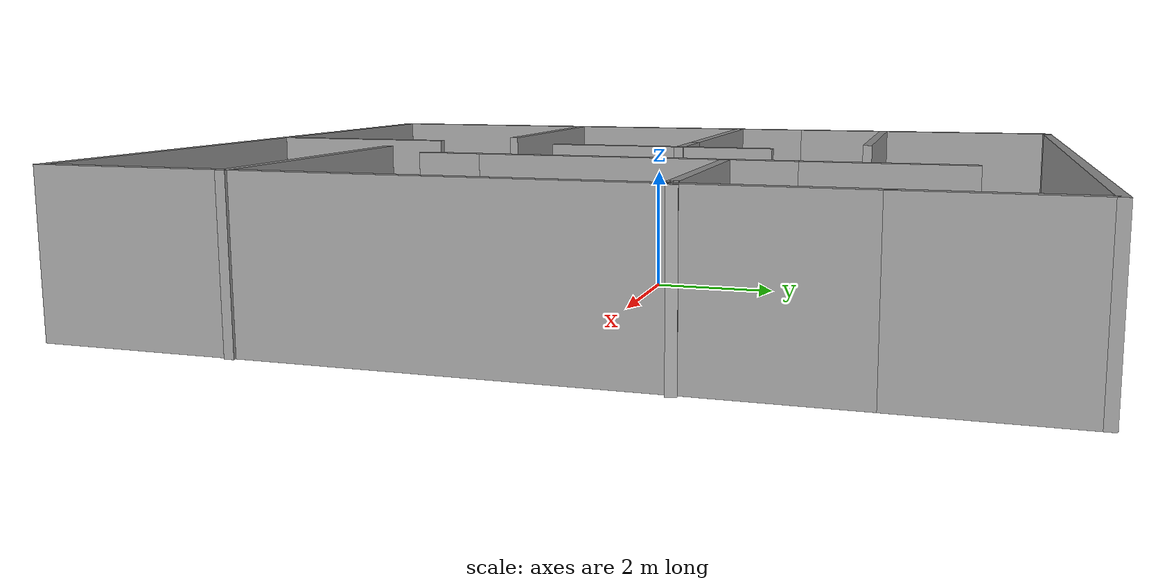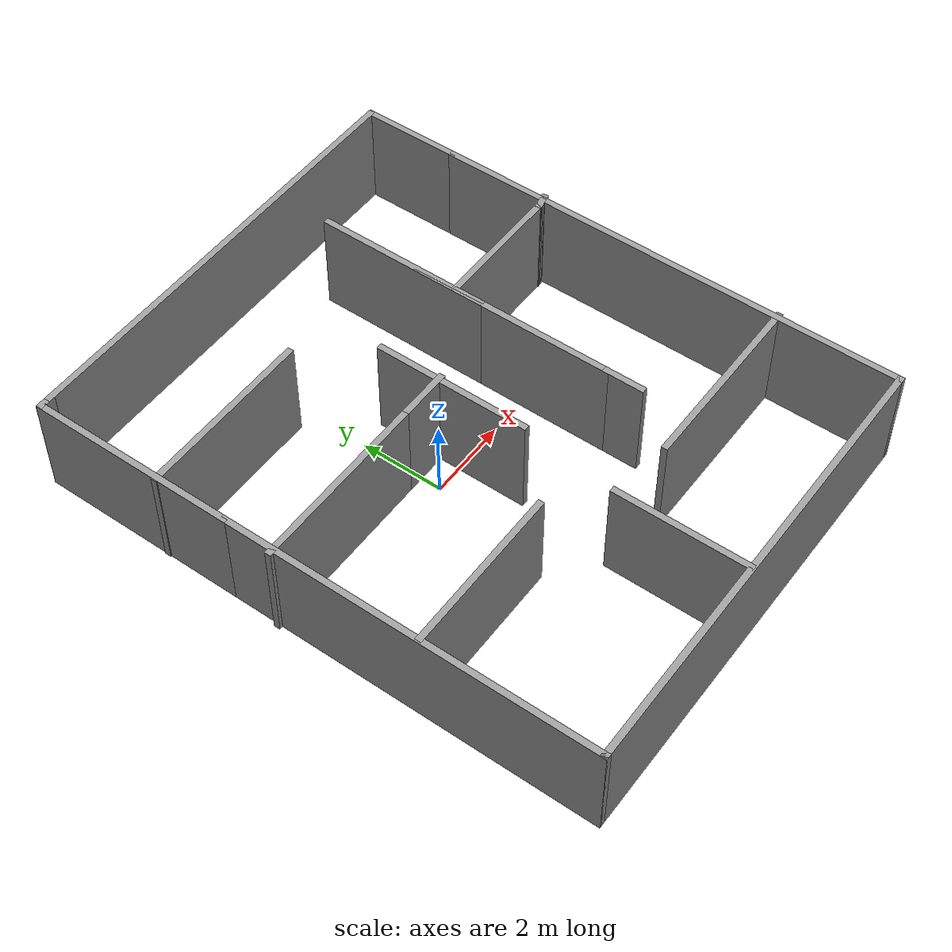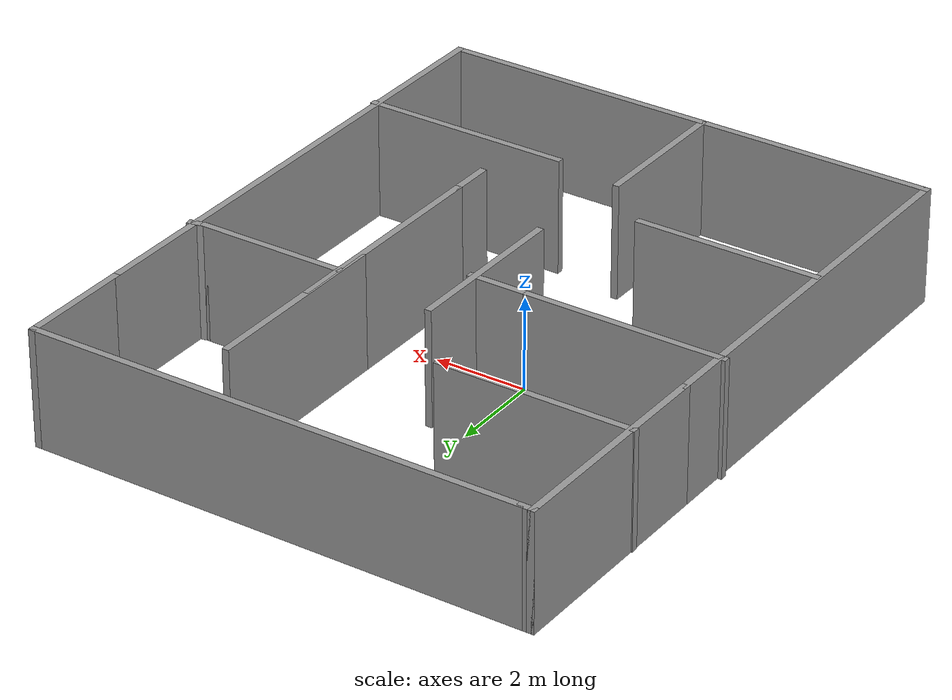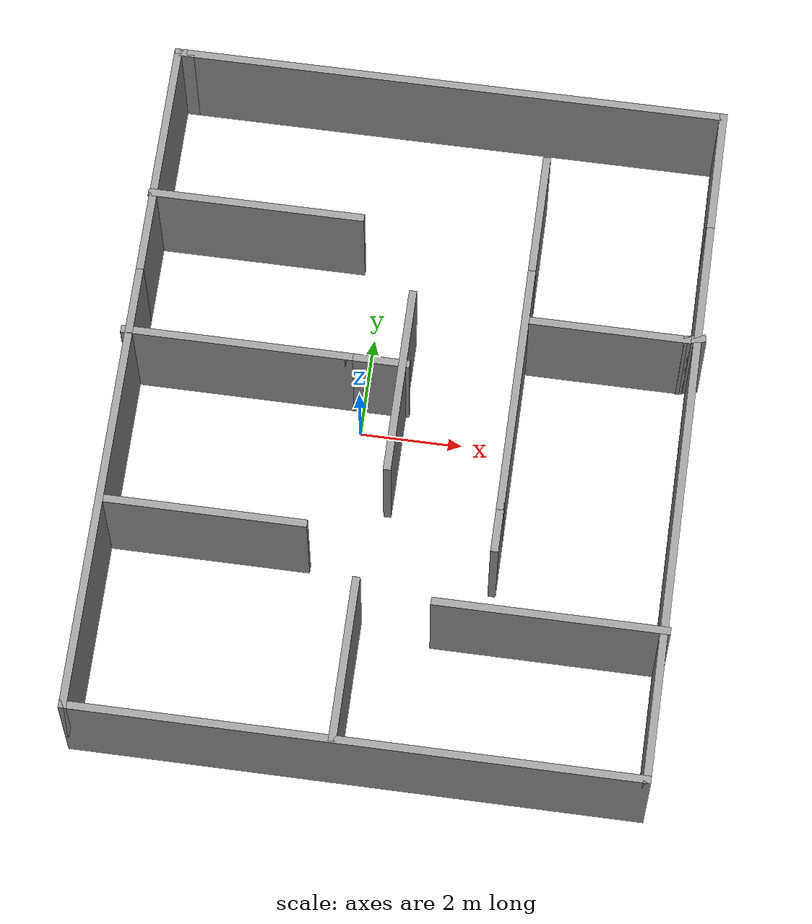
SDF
<?xml version='1.0'?>
<sdf version='1.7'>
  <model name='my_hospital'>
    <pose>0.879567 -0.229265 0 0 -0 0</pose>
    <link name='Wall_29'>
      <collision name='Wall_29_Collision'>
        <geometry>
          <box>
            <size>9 0.15 2.5</size>
          </box>
        </geometry>
        <pose>0 0 1.25 0 -0 0</pose>
      </collision>
      <visual name='Wall_29_Visual'>
        <pose>0 0 1.25 0 -0 0</pose>
        <geometry>
          <box>
            <size>9 0.15 2.5</size>
          </box>
        </geometry>
        <material>
          <script>
            <uri>file://media/materials/scripts/gazebo.material</uri>
            <name>Gazebo/Grey</name>
          </script>
          <ambient>1 1 1 1</ambient>
        </material>
        <meta>
          <layer>0</layer>
        </meta>
      </visual>
      <pose>-5.43009 -2.425 0 0 -0 -1.5708</pose>
    </link>
    <link name='Wall_30'>
      <collision name='Wall_30_Collision'>
        <geometry>
          <box>
            <size>11 0.15 2.5</size>
          </box>
        </geometry>
        <pose>0 0 1.25 0 -0 0</pose>
      </collision>
      <visual name='Wall_30_Visual'>
        <pose>0 0 1.25 0 -0 0</pose>
        <geometry>
          <box>
            <size>11 0.15 2.5</size>
          </box>
        </geometry>
        <material>
          <script>
            <uri>file://media/materials/scripts/gazebo.material</uri>
            <name>Gazebo/Grey</name>
          </script>
          <ambient>1 1 1 1</ambient>
        </material>
        <meta>
          <layer>0</layer>
        </meta>
      </visual>
      <pose>-0.005085 -6.85 0 0 -0 0</pose>
    </link>
    <link name='Wall_31'>
      <collision name='Wall_31_Collision'>
        <geometry>
          <box>
            <size>11.5 0.15 2.5</size>
          </box>
        </geometry>
        <pose>0 0 1.25 0 -0 0</pose>
      </collision>
      <visual name='Wall_31_Visual'>
        <pose>0 0 1.25 0 -0 0</pose>
        <geometry>
          <box>
            <size>11.5 0.15 2.5</size>
          </box>
        </geometry>
        <material>
          <script>
            <uri>file://media/materials/scripts/gazebo.material</uri>
            <name>Gazebo/Grey</name>
          </script>
          <ambient>1 1 1 1</ambient>
        </material>
        <meta>
          <layer>0</layer>
        </meta>
      </visual>
      <pose>5.41991 -1.175 0 0 -0 1.5708</pose>
    </link>
    <link name='Wall_32'>
      <collision name='Wall_32_Collision'>
        <geometry>
          <box>
            <size>2.5 0.15 2.5</size>
          </box>
        </geometry>
        <pose>0 0 1.25 0 -0 0</pose>
      </collision>
      <visual name='Wall_32_Visual'>
        <pose>0 0 1.25 0 -0 0</pose>
        <geometry>
          <box>
            <size>2.5 0.15 2.5</size>
          </box>
        </geometry>
        <material>
          <script>
            <uri>file://media/materials/scripts/gazebo.material</uri>
            <name>Gazebo/Grey</name>
          </script>
          <ambient>1 1 1 1</ambient>
        </material>
        <meta>
          <layer>0</layer>
        </meta>
      </visual>
      <pose>5.41991 5.675 0 0 -0 1.5708</pose>
    </link>
    <link name='Wall_40'>
      <collision name='Wall_40_Collision'>
        <geometry>
          <box>
            <size>10.75 0.15 2.5</size>
          </box>
        </geometry>
        <pose>0 0 1.25 0 -0 0</pose>
      </collision>
      <visual name='Wall_40_Visual'>
        <pose>0 0 1.25 0 -0 0</pose>
        <geometry>
          <box>
            <size>10.75 0.15 2.5</size>
          </box>
        </geometry>
        <material>
          <script>
            <uri>file://media/materials/scripts/gazebo.material</uri>
            <name>Gazebo/Grey</name>
          </script>
          <ambient>1 1 1 1</ambient>
        </material>
        <meta>
          <layer>0</layer>
        </meta>
      </visual>
      <pose>0.119915 6.85 0 0 -0 3.14159</pose>
    </link>
    <link name='Wall_44'>
      <collision name='Wall_44_Collision'>
        <geometry>
          <box>
            <size>5 0.15 2.5</size>
          </box>
        </geometry>
        <pose>0 0 1.25 0 -0 0</pose>
      </collision>
      <visual name='Wall_44_Visual'>
        <pose>0 0 1.25 0 -0 0</pose>
        <geometry>
          <box>
            <size>5 0.15 2.5</size>
          </box>
        </geometry>
        <material>
          <script>
            <uri>file://media/materials/scripts/gazebo.material</uri>
            <name>Gazebo/Grey</name>
          </script>
          <ambient>1 1 1 1</ambient>
        </material>
        <meta>
          <layer>0</layer>
        </meta>
      </visual>
      <pose>-5.43009 4.425 0 0 -0 1.5708</pose>
    </link>
    <link name='Wall_45'>
      <collision name='Wall_45_Collision'>
        <geometry>
          <box>
            <size>0.16 0.15 2.5</size>
          </box>
        </geometry>
        <pose>0 0 1.25 0 -0 0</pose>
      </collision>
      <visual name='Wall_45_Visual'>
        <pose>0 0 1.25 0 -0 0</pose>
        <geometry>
          <box>
            <size>0.16 0.15 2.5</size>
          </box>
        </geometry>
        <material>
          <script>
            <uri>file://media/materials/scripts/gazebo.material</uri>
            <name>Gazebo/Grey</name>
          </script>
          <ambient>1 1 1 1</ambient>
        </material>
        <meta>
          <layer>0</layer>
        </meta>
      </visual>
      <pose>-5.42509 6.85 0 0 -0 0</pose>
    </link>
    <link name='Wall_46'>
      <collision name='Wall_46_Collision'>
        <geometry>
          <box>
            <size>0.39 0.15 2.5</size>
          </box>
        </geometry>
        <pose>0 0 1.25 0 -0 0</pose>
      </collision>
      <visual name='Wall_46_Visual'>
        <pose>0 0 1.25 0 -0 0</pose>
        <geometry>
          <box>
            <size>0.39 0.15 2.5</size>
          </box>
        </geometry>
        <material>
          <script>
            <uri>file://media/materials/scripts/gazebo.material</uri>
            <name>Gazebo/Grey</name>
          </script>
          <ambient>1 1 1 1</ambient>
        </material>
        <meta>
          <layer>0</layer>
        </meta>
      </visual>
      <pose>-5.30009 6.85 0 0 -0 0</pose>
    </link>
    <link name='Wall_48'>
      <collision name='Wall_48_Collision'>
        <geometry>
          <box>
            <size>4.25 0.15 2.5</size>
          </box>
        </geometry>
        <pose>0 0 1.25 0 -0 0</pose>
      </collision>
      <visual name='Wall_48_Visual'>
        <pose>0 0 1.25 0 -0 0</pose>
        <geometry>
          <box>
            <size>4.25 0.15 2.5</size>
          </box>
        </geometry>
        <material>
          <script>
            <uri>file://media/materials/scripts/gazebo.material</uri>
            <name>Gazebo/Grey</name>
          </script>
          <ambient>1 1 1 1</ambient>
        </material>
        <meta>
          <layer>0</layer>
        </meta>
      </visual>
      <pose>-3.40192 3.73342 0 0 -0 0</pose>
    </link>
    <link name='Wall_50'>
      <collision name='Wall_50_Collision'>
        <geometry>
          <box>
            <size>4.5 0.15 2.5</size>
          </box>
        </geometry>
        <pose>0 0 1.25 0 -0 0</pose>
      </collision>
      <visual name='Wall_50_Visual'>
        <pose>0 0 1.25 0 -0 0</pose>
        <geometry>
          <box>
            <size>4.5 0.15 2.5</size>
          </box>
        </geometry>
        <material>
          <script>
            <uri>file://media/materials/scripts/gazebo.material</uri>
            <name>Gazebo/Grey</name>
          </script>
          <ambient>1 1 1 1</ambient>
        </material>
        <meta>
          <layer>0</layer>
        </meta>
      </visual>
      <pose>-3.33775 0.782922 0 0 -0 0</pose>
    </link>
    <link name='Wall_56'>
      <collision name='Wall_56_Collision'>
        <geometry>
          <box>
            <size>4 0.15 2.5</size>
          </box>
        </geometry>
        <pose>0 0 1.25 0 -0 0</pose>
      </collision>
      <visual name='Wall_56_Visual'>
        <pose>0 0 1.25 0 -0 0</pose>
        <geometry>
          <box>
            <size>4 0.15 2.5</size>
          </box>
        </geometry>
        <material>
          <script>
            <uri>file://media/materials/scripts/gazebo.material</uri>
            <name>Gazebo/Grey</name>
          </script>
          <ambient>1 1 1 1</ambient>
        </material>
        <meta>
          <layer>0</layer>
        </meta>
      </visual>
      <pose>-3.46608 -2.71509 0 0 -0 0</pose>
    </link>
    <link name='Wall_58'>
      <collision name='Wall_58_Collision'>
        <geometry>
          <box>
            <size>3.25 0.15 2.5</size>
          </box>
        </geometry>
        <pose>0 0 1.25 0 -0 0</pose>
      </collision>
      <visual name='Wall_58_Visual'>
        <pose>0 0 1.25 0 -0 0</pose>
        <geometry>
          <box>
            <size>3.25 0.15 2.5</size>
          </box>
        </geometry>
        <material>
          <script>
            <uri>file://media/materials/scripts/gazebo.material</uri>
            <name>Gazebo/Grey</name>
          </script>
          <ambient>1 1 1 1</ambient>
        </material>
        <meta>
          <layer>0</layer>
        </meta>
      </visual>
      <pose>-0.402613 -5.26887 0 0 -0 -1.5708</pose>
    </link>
    <link name='Wall_60'>
      <collision name='Wall_60_Collision'>
        <geometry>
          <box>
            <size>3.75 0.15 2.5</size>
          </box>
        </geometry>
        <pose>0 0 1.25 0 -0 0</pose>
      </collision>
      <visual name='Wall_60_Visual'>
        <pose>0 0 1.25 0 -0 0</pose>
        <geometry>
          <box>
            <size>3.75 0.15 2.5</size>
          </box>
        </geometry>
        <material>
          <script>
            <uri>file://media/materials/scripts/gazebo.material</uri>
            <name>Gazebo/Grey</name>
          </script>
          <ambient>1 1 1 1</ambient>
        </material>
        <meta>
          <layer>0</layer>
        </meta>
      </visual>
      <pose>-0.128855 0.442962 0 0 -0 -1.5708</pose>
    </link>
    <link name='Wall_62'>
      <collision name='Wall_62_Collision'>
        <geometry>
          <box>
            <size>1.25 0.15 2.5</size>
          </box>
        </geometry>
        <pose>0 0 1.25 0 -0 0</pose>
      </collision>
      <visual name='Wall_62_Visual'>
        <pose>0 0 1.25 0 -0 0</pose>
        <geometry>
          <box>
            <size>1.25 0.15 2.5</size>
          </box>
        </geometry>
        <material>
          <script>
            <uri>file://media/materials/scripts/gazebo.material</uri>
            <name>Gazebo/Grey</name>
          </script>
          <ambient>1 1 1 1</ambient>
        </material>
        <meta>
          <layer>0</layer>
        </meta>
      </visual>
      <pose>-0.612753 0.782922 0 0 -0 0</pose>
    </link>
    <link name='Wall_64'>
      <collision name='Wall_64_Collision'>
        <geometry>
          <box>
            <size>4.5 0.15 2.5</size>
          </box>
        </geometry>
        <pose>0 0 1.25 0 -0 0</pose>
      </collision>
      <visual name='Wall_64_Visual'>
        <pose>0 0 1.25 0 -0 0</pose>
        <geometry>
          <box>
            <size>4.5 0.15 2.5</size>
          </box>
        </geometry>
        <material>
          <script>
            <uri>file://media/materials/scripts/gazebo.material</uri>
            <name>Gazebo/Grey</name>
          </script>
          <ambient>1 1 1 1</ambient>
        </material>
        <meta>
          <layer>0</layer>
        </meta>
      </visual>
      <pose>3.29326 -3.93179 0 0 -0 0</pose>
    </link>
    <link name='Wall_68'>
      <collision name='Wall_68_Collision'>
        <geometry>
          <box>
            <size>5 0.15 2.5</size>
          </box>
        </geometry>
        <pose>0 0 1.25 0 -0 0</pose>
      </collision>
      <visual name='Wall_68_Visual'>
        <pose>0 0 1.25 0 -0 0</pose>
        <geometry>
          <box>
            <size>5 0.15 2.5</size>
          </box>
        </geometry>
        <material>
          <script>
            <uri>file://media/materials/scripts/gazebo.material</uri>
            <name>Gazebo/Grey</name>
          </script>
          <ambient>1 1 1 1</ambient>
        </material>
        <meta>
          <layer>0</layer>
        </meta>
      </visual>
      <pose>2.09162 0.547982 0 0 -0 -1.5708</pose>
    </link>
    <link name='Wall_70'>
      <collision name='Wall_70_Collision'>
        <geometry>
          <box>
            <size>4.25 0.15 2.5</size>
          </box>
        </geometry>
        <pose>0 0 1.25 0 -0 0</pose>
      </collision>
      <visual name='Wall_70_Visual'>
        <pose>0 0 1.25 0 -0 0</pose>
        <geometry>
          <box>
            <size>4.25 0.15 2.5</size>
          </box>
        </geometry>
        <material>
          <script>
            <uri>file://media/materials/scripts/gazebo.material</uri>
            <name>Gazebo/Grey</name>
          </script>
          <ambient>1 1 1 1</ambient>
        </material>
        <meta>
          <layer>0</layer>
        </meta>
      </visual>
      <pose>2.09162 3.3868 0 0 -0 -1.5708</pose>
    </link>
    <link name='Wall_72'>
      <collision name='Wall_72_Collision'>
        <geometry>
          <box>
            <size>3.25 0.15 2.5</size>
          </box>
        </geometry>
        <pose>0 0 1.25 0 -0 0</pose>
      </collision>
      <visual name='Wall_72_Visual'>
        <pose>0 0 1.25 0 -0 0</pose>
        <geometry>
          <box>
            <size>3.25 0.15 2.5</size>
          </box>
        </geometry>
        <material>
          <script>
            <uri>file://media/materials/scripts/gazebo.material</uri>
            <name>Gazebo/Grey</name>
          </script>
          <ambient>1 1 1 1</ambient>
        </material>
        <meta>
          <layer>0</layer>
        </meta>
      </visual>
      <pose>3.67204 1.99962 0 0 -0 0</pose>
    </link>
    <link name='Wall_73'>
      <collision name='Wall_73_Collision'>
        <geometry>
          <box>
            <size>0.15 0.15 2.5</size>
          </box>
        </geometry>
        <pose>0 0 1.25 0 -0 0</pose>
      </collision>
      <visual name='Wall_73_Visual'>
        <pose>0 0 1.25 0 -0 0</pose>
        <geometry>
          <box>
            <size>0.15 0.15 2.5</size>
          </box>
        </geometry>
        <material>
          <script>
            <uri>file://media/materials/scripts/gazebo.material</uri>
            <name>Gazebo/Grey</name>
          </script>
          <ambient>1 1 1 1</ambient>
        </material>
        <meta>
          <layer>0</layer>
        </meta>
      </visual>
      <pose>5.22204 1.99962 0 0 -0 0</pose>
    </link>
    <link name='Wall_76'>
      <collision name='Wall_76_Collision'>
        <geometry>
          <box>
            <size>0.432959 0.15 2.5</size>
          </box>
        </geometry>
        <pose>0 0 1.25 0 -0 0</pose>
      </collision>
      <visual name='Wall_76_Visual'>
        <pose>0 0 1.25 0 -0 0</pose>
        <geometry>
          <box>
            <size>0.432959 0.15 2.5</size>
          </box>
        </geometry>
        <material>
          <script>
            <uri>file://media/materials/scripts/gazebo.material</uri>
            <name>Gazebo/Grey</name>
          </script>
          <ambient>1 1 1 1</ambient>
        </material>
        <meta>
          <layer>0</layer>
        </meta>
      </visual>
      <pose>5.36021 2.03004 0 0 -0 -2.9249</pose>
    </link>
    <link name='Wall_78'>
      <collision name='Wall_78_Collision'>
        <geometry>
          <box>
            <size>1 0.15 2.5</size>
          </box>
        </geometry>
        <pose>0 0 1.25 0 -0 0</pose>
      </collision>
      <visual name='Wall_78_Visual'>
        <pose>0 0 1.25 0 -0 0</pose>
        <geometry>
          <box>
            <size>1 0.15 2.5</size>
          </box>
        </geometry>
        <material>
          <script>
            <uri>file://media/materials/scripts/gazebo.material</uri>
            <name>Gazebo/Grey</name>
          </script>
          <ambient>1 1 1 1</ambient>
        </material>
        <meta>
          <layer>0</layer>
        </meta>
      </visual>
      <pose>2.09162 -2.30202 0 0 -0 -1.5708</pose>
    </link>
    <static>1</static>
  </model>
</sdf>
